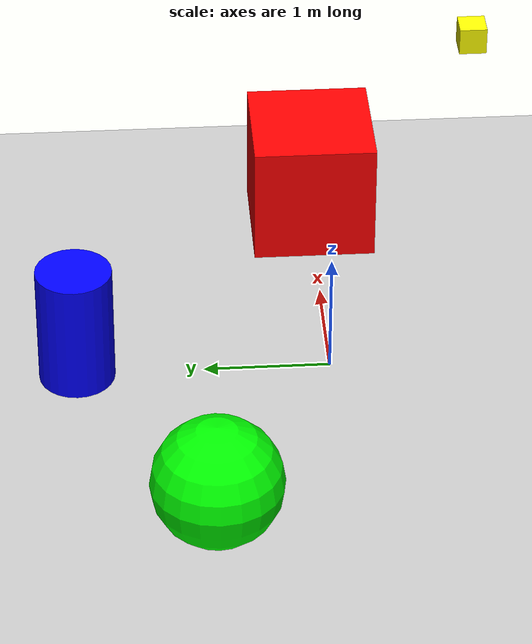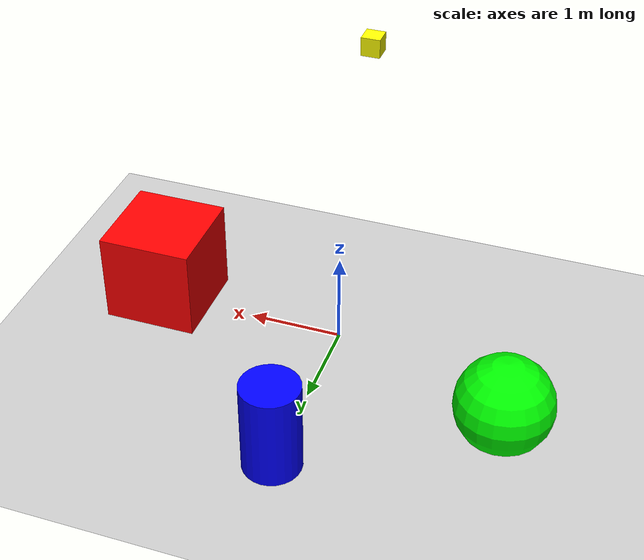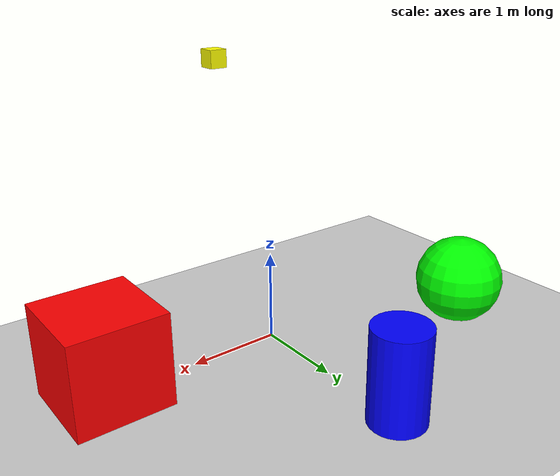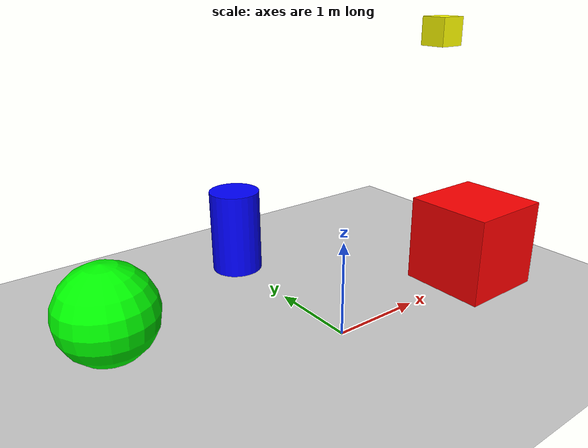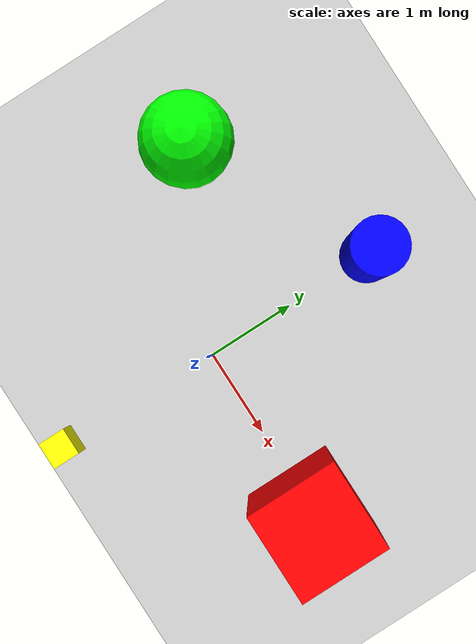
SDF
<?xml version="1.0" ?>
<sdf version="1.7">
  <world name="digital_twin_world">
    <!-- Include the default sun and ground plane -->
    <include>
      <uri>model://sun</uri>
    </include>

    <include>
      <uri>model://ground_plane</uri>
    </include>

    <!-- Physics engine configuration -->
    <physics name="1ms" type="ode">
      <max_step_size>0.001</max_step_size>
      <real_time_factor>1.0</real_time_factor>
      <real_time_update_rate>1000.0</real_time_update_rate>
      <gravity>0 0 -9.8</gravity>
    </physics>

    <!-- Visual markers and test objects -->
    <!-- Static box obstacle -->
    <model name="test_box">
      <pose>2 0 0.5 0 0 0</pose>
      <link name="link">
        <collision name="collision">
          <geometry>
            <box>
              <size>1 1 1</size>
            </box>
          </geometry>
        </collision>
        <visual name="visual">
          <geometry>
            <box>
              <size>1 1 1</size>
            </box>
          </geometry>
          <material>
            <ambient>1 0 0 1</ambient>
            <diffuse>1 0 0 1</diffuse>
            <specular>0.1 0.1 0.1 1</specular>
          </material>
        </visual>
        <inertial>
          <mass>1.0</mass>
          <inertia>
            <ixx>0.166667</ixx>
            <ixy>0</ixy>
            <ixz>0</ixz>
            <iyy>0.166667</iyy>
            <iyz>0</iyz>
            <izz>0.166667</izz>
          </inertia>
        </inertial>
      </link>
    </model>

    <!-- Static sphere obstacle -->
    <model name="test_sphere">
      <pose>-2 1 0.5 0 0 0</pose>
      <link name="link">
        <collision name="collision">
          <geometry>
            <sphere>
              <radius>0.5</radius>
            </sphere>
          </geometry>
        </collision>
        <visual name="visual">
          <geometry>
            <sphere>
              <radius>0.5</radius>
            </sphere>
          </geometry>
          <material>
            <ambient>0 1 0 1</ambient>
            <diffuse>0 1 0 1</diffuse>
            <specular>0.1 0.1 0.1 1</specular>
          </material>
        </visual>
        <inertial>
          <mass>1.0</mass>
          <inertia>
            <ixx>0.1</ixx>
            <ixy>0</ixy>
            <ixz>0</ixz>
            <iyy>0.1</iyy>
            <iyz>0</iyz>
            <izz>0.1</izz>
          </inertia>
        </inertial>
      </link>
    </model>

    <!-- Static cylinder obstacle -->
    <model name="test_cylinder">
      <pose>0 2 0.5 0 0 0</pose>
      <link name="link">
        <collision name="collision">
          <geometry>
            <cylinder>
              <radius>0.3</radius>
              <length>1.0</length>
            </cylinder>
          </geometry>
        </collision>
        <visual name="visual">
          <geometry>
            <cylinder>
              <radius>0.3</radius>
              <length>1.0</length>
            </cylinder>
          </geometry>
          <material>
            <ambient>0 0 1 1</ambient>
            <diffuse>0 0 1 1</diffuse>
            <specular>0.1 0.1 0.1 1</specular>
          </material>
        </visual>
        <inertial>
          <mass>1.0</mass>
          <inertia>
            <ixx>0.145</ixx>
            <ixy>0</ixy>
            <ixz>0</ixz>
            <iyy>0.145</iyy>
            <iyz>0</iyz>
            <izz>0.09</izz>
          </inertia>
        </inertial>
      </link>
    </model>

    <!-- Falling object for gravity test -->
    <model name="falling_object">
      <pose>0 -1 3 0 0 0</pose>
      <link name="link">
        <collision name="collision">
          <geometry>
            <box>
              <size>0.2 0.2 0.2</size>
            </box>
          </geometry>
        </collision>
        <visual name="visual">
          <geometry>
            <box>
              <size>0.2 0.2 0.2</size>
            </box>
          </geometry>
          <material>
            <ambient>1 1 0 1</ambient>
            <diffuse>1 1 0 1</diffuse>
            <specular>0.1 0.1 0.1 1</specular>
          </material>
        </visual>
        <inertial>
          <mass>0.5</mass>
          <inertia>
            <ixx>0.003333</ixx>
            <ixy>0</ixy>
            <ixz>0</ixz>
            <iyy>0.003333</iyy>
            <iyz>0</iyz>
            <izz>0.003333</izz>
          </inertia>
        </inertial>
      </link>
    </model>

    <!-- GUI Configuration -->
    <gui fullscreen="0">
      <camera name="user_camera">
        <pose>5.0 -5.0 3.0 0.4 0.0 1.0</pose>
        <view_controller>orbit</view_controller>
        <projection_type>perspective</projection_type>
      </camera>
    </gui>
  </world>
</sdf>
